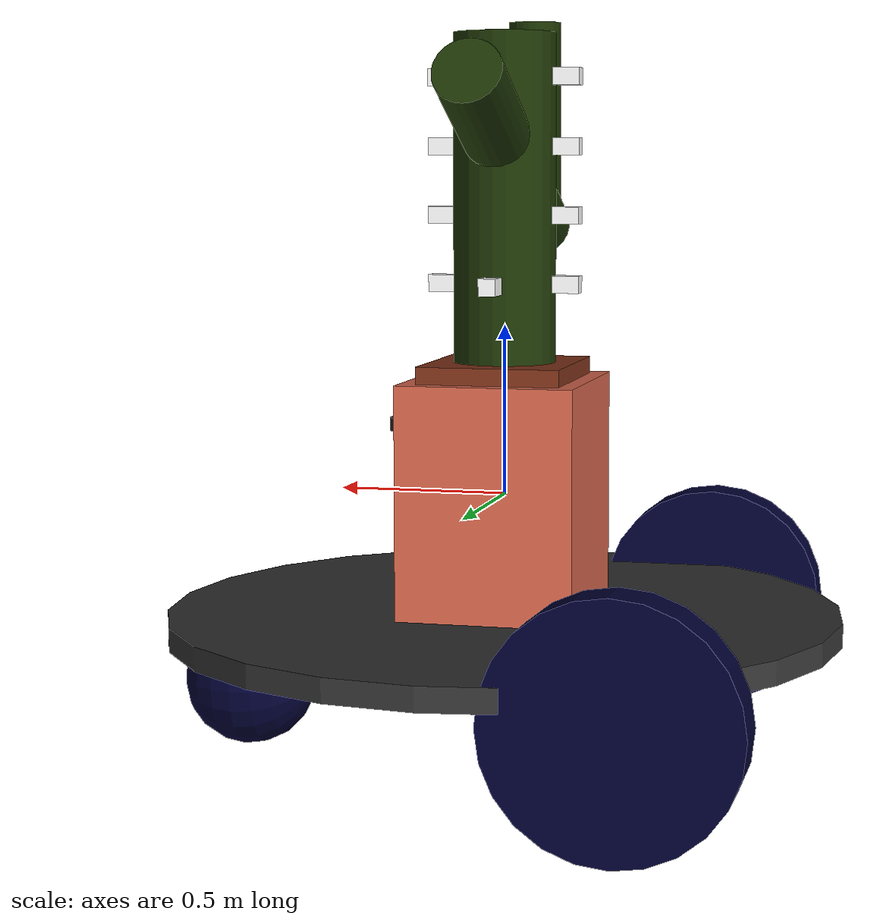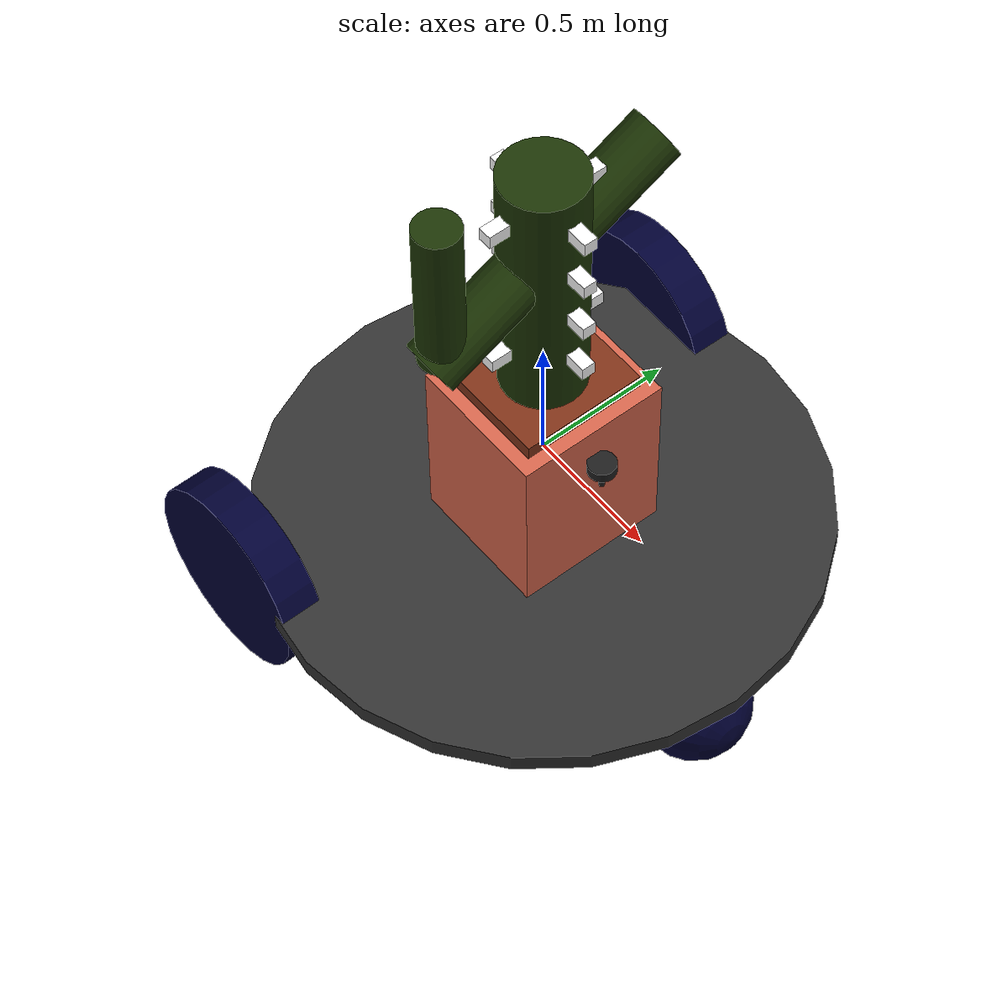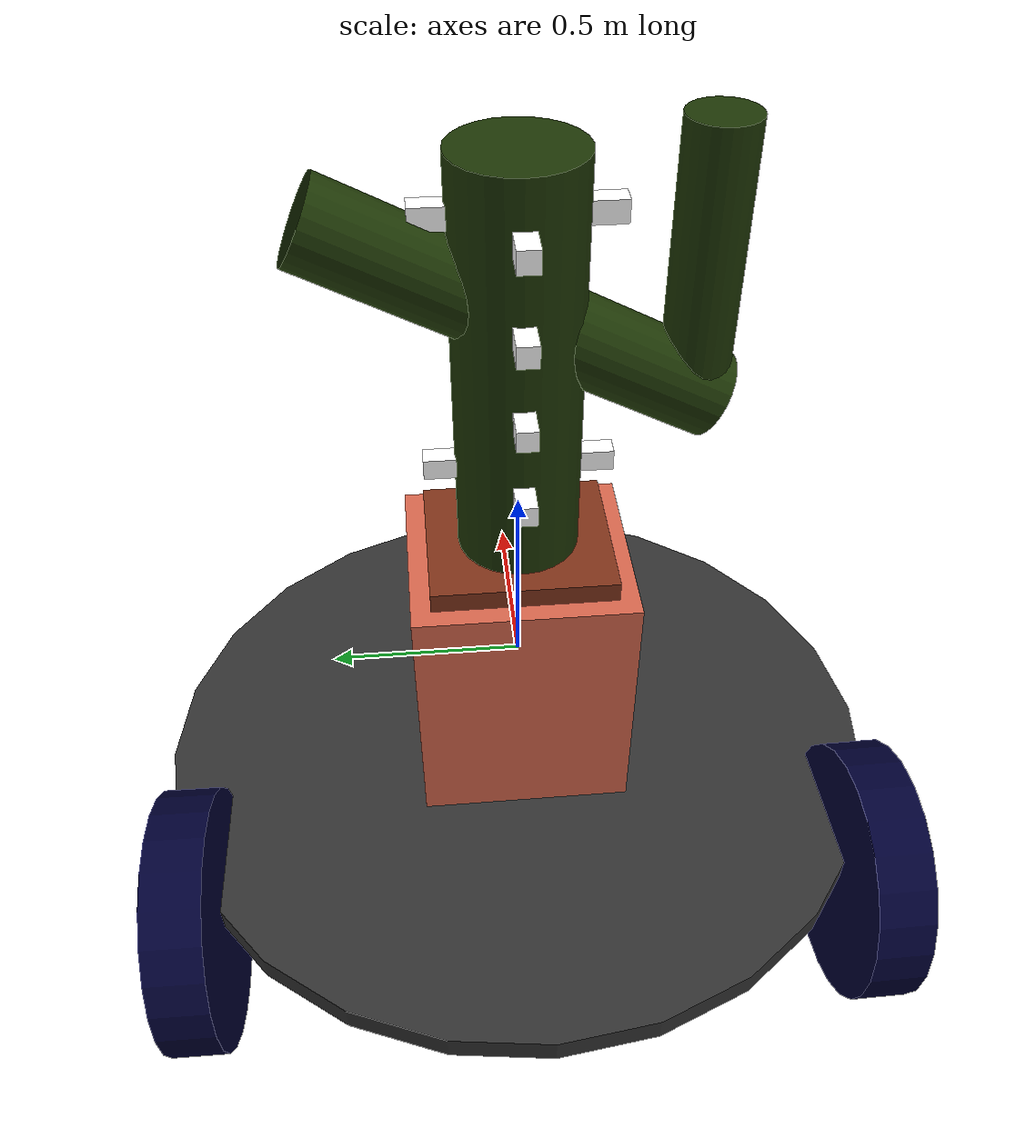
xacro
<?xml version="1.0"?>
<robot name="kak" xmlns:xacro="http://ros.org/wiki/xacro">

 <xacro:include filename="gazebo.urdf.xacro" />
 <xacro:include filename="lidar.urdf.xacro" />

  <material name="Gray">
    <color rgba="0.2 0.2 0.2 1.0"/>
  </material>

  <material name="Pink">
    <color rgba="0.84 0.4 0.3 0.9"/>
  </material>

  <material name="Brown">
    <color rgba="0.5 0.2 0.1 1.0"/>
  </material>

  <material name="Green">
    <color rgba="0.112 0.21 0.021 1.0"/>
  </material>

  <material name="White">
    <color rgba="1 1 1 1.0"/>
  </material>

  <material name="Blue">
    <color rgba="0 0 0.2 1.0"/>
  </material>

   <!-- Define intertial property macros  -->
  <xacro:macro name="box_inertia" params="m w h d">
    <inertial>
      <origin xyz="0 0 0" rpy="${pi/2} 0 ${pi/2}"/>
      <mass value="${m}"/>
      <inertia ixx="${(m/12) * (h*h + d*d)}" ixy="0.0" ixz="0.0" iyy="${(m/12) * (w*w + d*d)}" iyz="0.0" izz="${(m/12) * (w*w + h*h)}"/>
    </inertial>
  </xacro:macro>

  <xacro:macro name="cylinder_inertia" params="m r h">
    <inertial>
      <origin xyz="0 0 0" rpy="${pi/2} 0 0" />
      <mass value="${m}"/>
      <inertia ixx="${(m/12) * (3*r*r + h*h)}" ixy = "0" ixz = "0" iyy="${(m/12) * (3*r*r + h*h)}" iyz = "0" izz="${(m/2) * (r*r)}"/>
    </inertial>
  </xacro:macro>

  <xacro:macro name="sphere_inertia" params="m r">
    <inertial>
      <mass value="${m}"/>
      <inertia ixx="${(2/5) * m * (r*r)}" ixy="0.0" ixz="0.0" iyy="${(2/5) * m * (r*r)}" iyz="0.0" izz="${(2/5) * m * (r*r)}"/>
    </inertial>
  </xacro:macro>

  <!--Base link-->
  <link name="base_link">
  </link>

  <!-- Robot Footprint -->
  <link name="base_footprint"/>

  <joint name="base_joint" type="fixed">
    <parent link="base_link"/>
    <child link="base_footprint"/>
    <origin xyz="0.0 0.0 -0.3" rpy="0 0 0"/>
  </joint>

   <link name="stol">
    <visual>
      <origin xyz="0 0 -0.38" rpy="0 0 0"/>
      <geometry>
	  <cylinder radius="1.0" length="0.07"/>
      </geometry>
      <material name="Gray"/>
    </visual>

    <collision>
      <geometry>
        <cylinder radius="1.0" length="0.07"/>
      </geometry>
    </collision>

    <xacro:cylinder_inertia m="0.7" r="1.0" h="0.07"/>
  </link>

  <joint name="stol_joint" type="fixed">
    <parent link="base_link"/>
    <child link="stol"/>
    <origin xyz="0.0 0.0 0.0" rpy="0 0 0"/>
  </joint>

  <!-- * * * Link Definitions * * * -->
  <link name="vaza">
    <visual>
      <geometry>
	<box size="0.52 0.56 0.685"/>
      </geometry>
      <material name="Pink"/>
    </visual>

    <collision>
      <geometry>
        <box size="0.52 0.56 0.685"/>
      </geometry>
    </collision>

    <xacro:box_inertia m="0.5" w="0.52" d="0.56" h="0.685"/>
  </link>

  <joint name="vaza_joint" type="fixed">
    <parent link="stol"/>
    <child link="vaza"/>
    <origin xyz="0 0 0" rpy="0 0 0"/>
  </joint>

  <link name="zemlya">
    <visual>
      <geometry>
	<box size="0.42 0.46 0.585"/>
      </geometry>
      <material name="Brown"/>
    </visual>

    <collision>
      <geometry>
        <box size="0.42 0.46 0.585"/>
      </geometry>
    </collision>

    <xacro:box_inertia m="0.5" w="0.42" d="0.46" h="0.585"/>
  </link>

  <joint name="zemlya_joint" type="fixed">
    <parent link="stol"/>
    <child link="zemlya"/>
    <origin xyz="0 0 0.1" rpy="0 0 0"/>
  </joint>

  <link name="kaktys">
    <visual>
      <geometry>
	<cylinder radius="0.15" length="1.7"/>
      </geometry>
      <material name="Green"/>
    </visual>

    <collision>
      <geometry>
        <cylinder radius="0.15" length="1.7"/>
      </geometry>
    </collision>

    <xacro:cylinder_inertia m="1" r="0.15" h="1.7"/>
  </link>

  <joint name="kaktys_joint" type="fixed">
    <parent link="stol"/>
    <child link="kaktys"/>
    <origin xyz="0 0 0.5" rpy="0 0 0"/>
  </joint>

  <link name="vetka_1">
    <visual>
      <geometry>
	<cylinder radius="0.1" length="1.0"/>
      </geometry>
      <material name="Green"/>
    </visual>

    <collision>
      <geometry>
        <cylinder radius="0.1" length="1.0"/>
      </geometry>
    </collision>

    <xacro:cylinder_inertia m="0.1" r="0.1" h="1.0"/>
  </link>

  <joint name="vetka_1_joint" type="fixed">
    <parent link="kaktys"/>
    <child link="vetka_1"/>
    <origin xyz="0 0 0.5" rpy="90 0 0"/>
  </joint>

  <link name="vetka_2">
    <visual>
      <geometry>
        <cylinder radius="0.08" length="0.6"/>
      </geometry>
      <material name="Green"/>
    </visual>

    <collision>
      <geometry>
        <cylinder radius="0.08" length="0.6"/>
      </geometry>
    </collision>

    <xacro:cylinder_inertia m="0.1" r="0.08" h="0.6"/>
  </link>

  <joint name="vetka_2_joint" type="fixed">
    <parent link="kaktys"/>
    <child link="vetka_2"/>
    <origin xyz="0 -0.4 0.6" rpy="0 0 0"/>
  </joint>

  <xacro:macro name = "igli" params = "prefix z_high a_long b_weight">
    <link name="igla_${prefix}">
      <visual>
        <geometry>
          <box size="${a_long} ${b_weight} 0.05"/>
	</geometry>
	<material name="White"/>
      </visual>

      <collision>
        <geometry>
          <box size="${a_long} ${b_weight} 0.05"/>
        </geometry>
      </collision>

      <xacro:box_inertia m="0.01" w="${a_long}" d="${b_weight}" h="0.05"/>
    </link>

    <joint name="igla_${prefix}_joint" type="fixed">
      <parent link="kaktys"/>
      <child link="igla_${prefix}"/>
      <origin xyz="0 0 ${z_high}" rpy="0 0 0"/>
    </joint>

  </xacro:macro>

  <xacro:igli prefix="1" z_high = "0.1225" a_long = "0.05" b_weight = "0.45" />
  <xacro:igli prefix="2" z_high = "0.1225" a_long = "0.45" b_weight = "0.05" />
  <xacro:igli prefix="3" z_high = "0.3225" a_long = "0.45" b_weight = "0.05" />
  <xacro:igli prefix="4" z_high = "0.5225" a_long = "0.45" b_weight = "0.05" />
  <xacro:igli prefix="5" z_high = "0.7225" a_long = "0.05" b_weight = "0.45" />
  <xacro:igli prefix="6" z_high = "0.7225" a_long = "0.45" b_weight = "0.05" />

    <link name="wheel_1">
      <visual>
       <origin xyz="0 0 0" rpy="1.56 0 0"/>
        <geometry>
          <cylinder radius="0.35" length="0.15"/>
	</geometry>
        <material name="Blue"/>
      </visual>

      <collision>
        <origin xyz="0 0 0" rpy="${pi/2} 0 0"/>
        <geometry>
          <cylinder radius="0.35" length="0.15"/>
        </geometry>
      </collision>

      <xacro:cylinder_inertia m="0.7" r="0.35" h="0.15"/>
    </link>

    <joint name="wheel_1_joint" type="continuous">
      <parent link="base_link"/>
      <child link="wheel_1"/>
      <origin xyz="-0.5 0.9 -0.45" rpy="0 -1.56 0"/>
      <axis xyz="0 1 0"/>
    </joint>

    <link name="wheel_2">
      <visual>
       <origin xyz="0 0 0" rpy="1.56 0 0"/>
        <geometry>
          <cylinder radius="0.35" length="0.15"/>
	</geometry>
        <material name="Blue"/>
      </visual>

      <collision>
        <origin xyz="0 0 0" rpy="${pi/2} 0 0"/>
        <geometry>
          <cylinder radius="0.35" length="0.15"/>
        </geometry>
      </collision>

      <xacro:cylinder_inertia m="0.7" r="0.35" h="0.15"/>
    </link>

    <joint name="wheel_2_joint" type="continuous">
      <parent link="base_link"/>
      <child link="wheel_2"/>
      <origin xyz="-0.5 -0.9 -0.45" rpy="0 1.56 0"/>
      <axis xyz="0 1 0"/>
    </joint>

  <link name="wheel_center">
    <visual>
      <geometry>
        <sphere radius="0.2"/>
      </geometry>
      <material name="Blue"/>
    </visual>

    <collision>
      <geometry>
        <sphere radius="0.2"/>
      </geometry>
    </collision>

    <xacro:sphere_inertia m="1.0" r="0.2"/>
  </link>

  <joint name="wheel_center_joint" type="fixed">
    <parent link="base_link"/>
    <child link="wheel_center"/>
    <origin xyz="0.8 0 -0.6" rpy="0 1.56 0"/>
    <!--axis xyz="0 1 0"/-->
  </joint>

   <gazebo reference="wheel_center">
      <mu1 value="0.001"/>
      <mu2 value="0.001"/>
  </gazebo>

</robot>

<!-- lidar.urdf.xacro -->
<robot xmlns:xacro="http://www.ros.org/wiki/xacro">

    <joint name="laser_joint" type="fixed">
        <parent link="base_link"/>
        <child link="laser_frame"/>
        <origin xyz="0.3 0 0.2" rpy="0 0 0"/>
    </joint>

    <link name="laser_frame">
        <visual>
            <geometry>
                <cylinder radius="0.05" length="0.04"/>
            </geometry>
            <material name="black"/>
        </visual>
        <visual>
            <origin xyz="0 0 -0.05"/>
            <geometry>
                <cylinder radius="0.01" length="0.1"/>
            </geometry>
            <material name="black"/>
        </visual>
        <collision>
            <geometry>
                <cylinder radius="0.05" length="0.04"/>
            </geometry>
        </collision>
        <inertial>
            <origin xyz="0 0 0" rpy="0 0 0"/>
            <mass value="0.1" />
            <inertia ixx="${(1/12) * 0.1 * (3*0.05*0.05 + 0.04*0.04)}" ixy="0.0" ixz="0.0"
                     iyy="${(1/12) * 0.1 * (3*0.05*0.05 + 0.04*0.04)}" iyz="0.0"
                     izz="${(1/2) * 0.1 * (0.05*0.05)}" />
        </inertial>
    </link>

    <gazebo reference="laser_frame">
        <material>Gazebo/Black</material>

        <sensor name='laser_sensor_frame' type='gpu_lidar'>"
            <gz_frame_id>kak/laser_frame</gz_frame_id>
            <pose> 0 0 0 0 0 0 </pose>
            <visualize>true</visualize>
            <always_on>true</always_on>
            <update_rate>10</update_rate>
            <ray>
                <scan>
                    <horizontal>
                        <samples>360</samples>
                        <min_angle>-3.14</min_angle>
                        <max_angle>3.14</max_angle>
                    </horizontal>
                </scan>
                <range>
                    <min>0.3</min>
                    <max>12</max>
                </range>
                <noise>
                    <type>gaussian</type>
                    <mean>0.0</mean>
                    <stddev>0.007</stddev>
                </noise>
            </ray>
        </sensor>
    </gazebo>
</robot>
